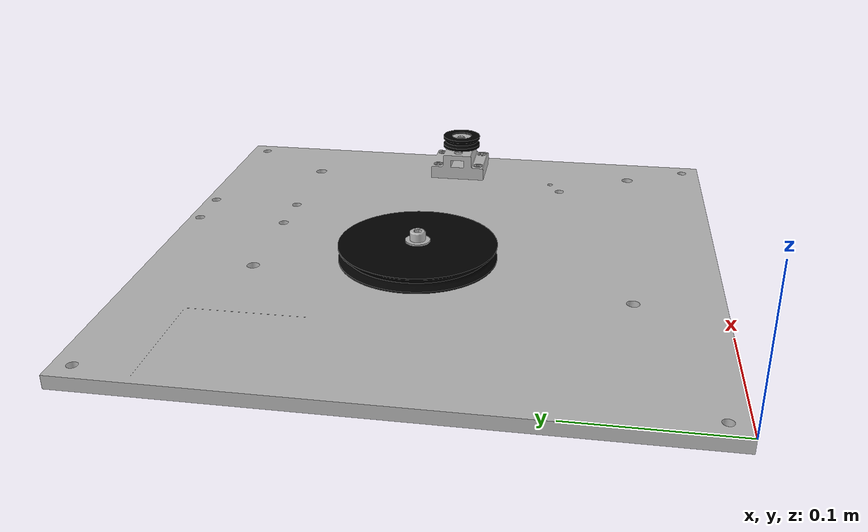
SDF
<?xml version='1.0' encoding='UTF-8'?>
<sdf version="1.7">
  <model name="round_belt_task_board">
    <link name="board">
      <visual name="board">
        <pose>0 0 0 0 0 0</pose>
        <geometry>
          <mesh>
            <uri>round_belt_task_board/round_belt_task_board.obj</uri>
          </mesh>
        </geometry>
      </visual>
      <collision name="board_collision">
        <pose>0.192 0.192 -0.005 0 0 0</pose>
        <geometry>
          <box>
            <size>0.384 0.384 0.01</size>
          </box>
        </geometry>
      </collision>
    </link>
    <link name="small_round_pulley">
      <inertial>
        <pose>0 0 0 0 0 0</pose>
        <mass>0.05</mass>
        <inertia>
          <ixx>3.06677e-05</ixx>
          <iyy>3.0667375e-05</iyy>
          <izz>6.0454911e-05</izz>
          <ixy>5.7518697e-14</ixy>
          <ixz>1.6724428e-11</ixz>
          <iyz>-1.9003215e-11</iyz>
        </inertia>
      </inertial>
      <visual name="first_half">
        <pose>0.355 0.196 0.0248 0 0 0</pose>
        <geometry>
          <mesh>
            <uri>round_belt_task_board/small_round_pulley/small_round_pulley_half.obj</uri>
            <scale>0.001 0.001 0.001</scale>
          </mesh>
        </geometry>
        <material>
          <diffuse>0.0 0.0 0.0 1</diffuse>
        </material>
      </visual>
      <collision name="first_half_volume">
        <pose>0.355 0.196 0.0248 0 0 0</pose>
        <geometry>
          <mesh>
            <uri>round_belt_task_board/small_round_pulley/small_round_pulley_half.obj</uri>
            <scale>0.001 0.001 0.001</scale>
          </mesh>
        </geometry>
        <drake:proximity_properties xmlns:drake="uri:drake">
          <drake:compliant_hydroelastic/>
          <drake:hydroelastic_modulus> 3.0e7 </drake:hydroelastic_modulus>
          <drake:mesh_resolution_hint> 0.02 </drake:mesh_resolution_hint>
          <drake:hunt_crossley_dissipation>10</drake:hunt_crossley_dissipation>
          <drake:mu_dynamic>0.3</drake:mu_dynamic>
        </drake:proximity_properties>
      </collision>
      <visual name="second_half">
        <pose>0.355 0.196 0.0248 3.14159 0 0</pose>
        <geometry>
          <mesh>
            <uri>round_belt_task_board/small_round_pulley/small_round_pulley_half.obj</uri>
            <scale>0.001 0.001 0.001</scale>
          </mesh>
        </geometry>
        <material>
          <diffuse>0.0 0.0 0.0 1</diffuse>
        </material>
      </visual>
      <collision name="second_half_volume">
        <pose>0.355 0.196 0.0248 3.14159 0 0</pose>
        <geometry>
          <mesh>
            <uri>round_belt_task_board/small_round_pulley/small_round_pulley_half.obj</uri>
            <scale>0.001 0.001 0.001</scale>
          </mesh>
        </geometry>
        <drake:proximity_properties xmlns:drake="uri:drake">
          <drake:compliant_hydroelastic/>
          <drake:hydroelastic_modulus> 3.0e7 </drake:hydroelastic_modulus>
          <drake:mesh_resolution_hint> 0.02 </drake:mesh_resolution_hint>
          <drake:hunt_crossley_dissipation>10</drake:hunt_crossley_dissipation>
          <drake:mu_dynamic>0.3</drake:mu_dynamic>
        </drake:proximity_properties>
      </collision>
    </link>
    <link name="large_round_pulley">
      <inertial>
        <pose>0 0 0 0 0 0</pose>
        <mass>0.05</mass>
        <inertia>
          <ixx>3.06677e-05</ixx>
          <iyy>3.0667375e-05</iyy>
          <izz>6.0454911e-05</izz>
          <ixy>5.7518697e-14</ixy>
          <ixz>1.6724428e-11</ixz>
          <iyz>-1.9003215e-11</iyz>
        </inertia>
      </inertial>
      <visual name="first_half">
        <pose>0.140 0.196 0.0248 0 0 0</pose>
        <geometry>
          <mesh>
            <uri>round_belt_task_board/large_round_pulley/large_round_pulley_half.obj</uri>
            <scale>0.001 0.001 0.001</scale>
          </mesh>
        </geometry>
        <material>
          <diffuse>0.0 0.0 0.0 1</diffuse>
        </material>
      </visual>
      <collision name="first_half_volume">
        <pose>0.140 0.196 0.0248 0 0 0</pose>
        <geometry>
          <mesh>
            <uri>round_belt_task_board/large_round_pulley/large_round_pulley_half.obj</uri>
            <scale>0.001 0.001 0.001</scale>
          </mesh>
        </geometry>
        <drake:proximity_properties xmlns:drake="uri:drake">
          <drake:compliant_hydroelastic/>
          <drake:hydroelastic_modulus> 3.0e7 </drake:hydroelastic_modulus>
          <drake:mesh_resolution_hint> 0.02 </drake:mesh_resolution_hint>
          <drake:hunt_crossley_dissipation>10</drake:hunt_crossley_dissipation>
          <drake:mu_dynamic>0.3</drake:mu_dynamic>
        </drake:proximity_properties>
      </collision>
      <visual name="second_half">
        <pose>0.140 0.196 0.0248 3.14159 0 0</pose>
        <geometry>
          <mesh>
            <uri>round_belt_task_board/large_round_pulley/large_round_pulley_half.obj</uri>
            <scale>0.001 0.001 0.001</scale>
          </mesh>
        </geometry>
        <material>
          <diffuse>0.0 0.0 0.0 1</diffuse>
        </material>
      </visual>
      <collision name="second_half_volume">
        <pose>0.140 0.196 0.0248 3.14159 0 0</pose>
        <geometry>
          <mesh>
            <uri>round_belt_task_board/large_round_pulley/large_round_pulley_half.obj</uri>
            <scale>0.001 0.001 0.001</scale>
          </mesh>
        </geometry>
        <drake:proximity_properties xmlns:drake="uri:drake">
          <drake:compliant_hydroelastic/>
          <drake:hydroelastic_modulus> 3.0e7 </drake:hydroelastic_modulus>
          <drake:mesh_resolution_hint> 0.02 </drake:mesh_resolution_hint>
          <drake:hunt_crossley_dissipation>10</drake:hunt_crossley_dissipation>
          <drake:mu_dynamic>0.3</drake:mu_dynamic>
        </drake:proximity_properties>
      </collision>
    </link>
    <joint name="small_round_pulley_joint" type="fixed">
      <parent>board</parent>
      <child>small_round_pulley</child>
      <pose>0 0 0 0 0 0</pose>
      <axis>
        <xyz>0 0 1</xyz>
      </axis>
    </joint>
    <joint name="large_round_pulley_joint" type="fixed">
      <parent>board</parent>
      <child>large_round_pulley</child>
      <pose>0 0 0 0 0 0</pose>
      <axis>
        <xyz>0 0 1</xyz>
      </axis>
    </joint>
  </model>
</sdf>
